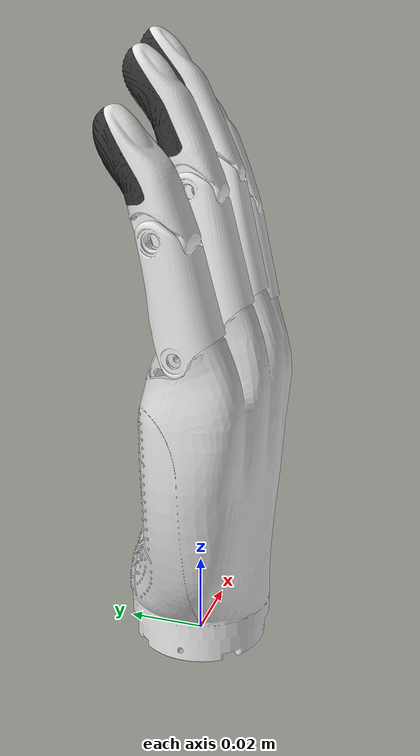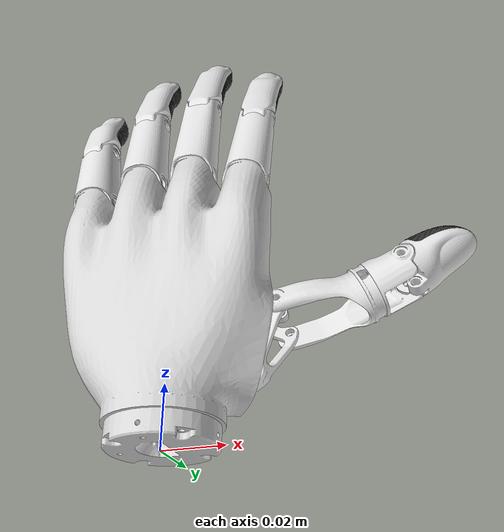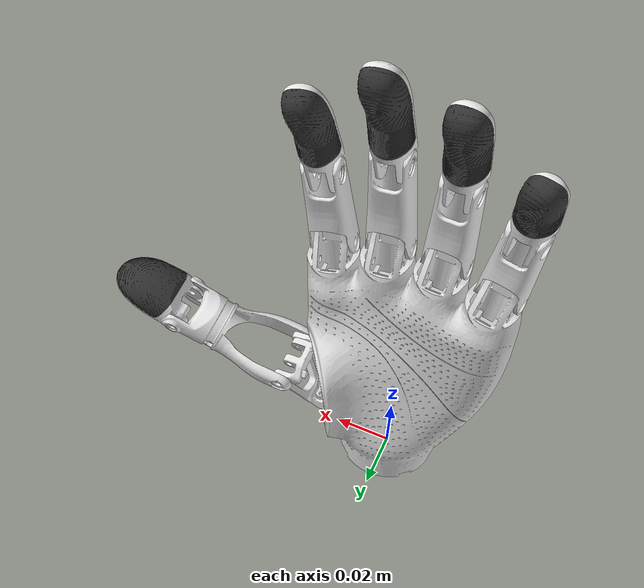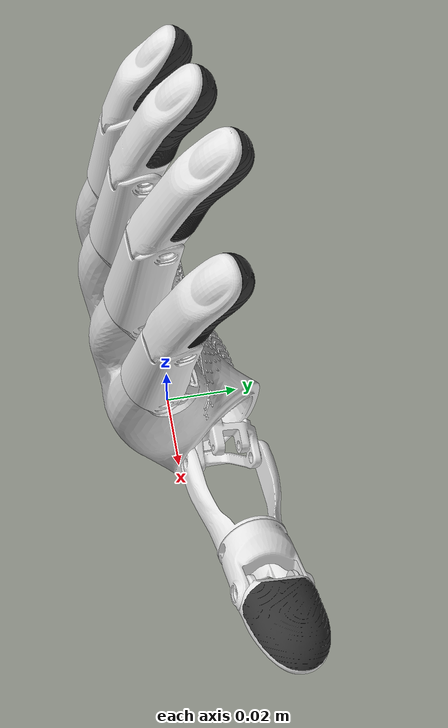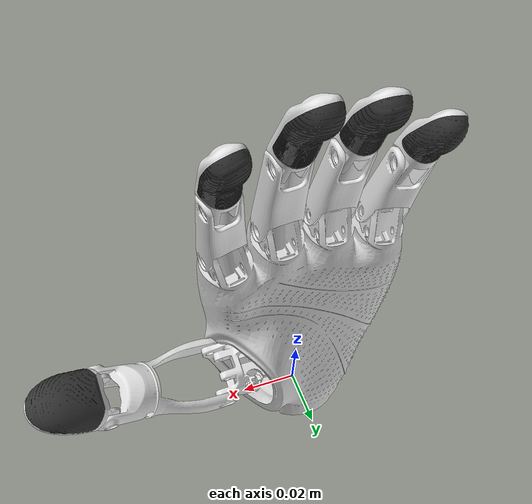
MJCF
<?xml version="1.0" encoding="utf-8"?>
<mujoco model="DH116S-L000-A1">

  <compiler angle="radian" meshdir="../meshes" eulerseq="XYZ" autolimits="true"/>
  <option gravity="0 0 -9.81" timestep="0.002" iterations="100"/>

  <default>
    <!-- 统一关节阻尼与虚拟惯量，配合位置执行器形成过阻尼响应，减小摇晃 -->
    <joint type="hinge" damping="2.0" armature="0.01" frictionloss="0"/>
    <!-- 默认关闭接触参与；需要接触的被动指节/胶垫在各自 geom 上单独覆盖 -->
    <geom condim="4" friction="1.0 0.005 0.001" contype="0" conaffinity="0"/>
    <!-- equality: 减小 solref[0] 时间常数 → 约束更硬，残差更小 -->
    <equality solref="0.004 1" solimp="0.9 0.99 0.001 0.5 2"/>
  </default>

  <!-- ==================== 网格资源 ==================== -->
  <asset>
    <mesh name="base_link" file="base_link.STL"/>
    <mesh name="finger11_link" file="finger11_link.STL"/>
    <mesh name="finger12_link" file="finger12_link.STL"/>
    <mesh name="finger13_link" file="finger13_link.STL"/>
    <mesh name="finger14_link" file="finger14_link.STL"/>
    <mesh name="finger21_link" file="finger21_link.STL"/>
    <mesh name="finger22_link" file="finger22_link.STL"/>
    <mesh name="finger23_link" file="finger23_link.STL"/>
    <mesh name="finger31_link" file="finger31_link.STL"/>
    <mesh name="finger32_link" file="finger32_link.STL"/>
    <mesh name="finger33_link" file="finger33_link.STL"/>
    <mesh name="finger41_link" file="finger41_link.STL"/>
    <mesh name="finger42_link" file="finger42_link.STL"/>
    <mesh name="finger43_link" file="finger43_link.STL"/>
    <mesh name="finger51_link" file="finger51_link.STL"/>
    <mesh name="finger52_link" file="finger52_link.STL"/>
    <mesh name="finger53_link" file="finger53_link.STL"/>
  </asset>

  <!-- ==================== 运动体树 ==================== -->
  <worldbody>

    <!-- 手掌基座（焊死在世界坐标系） -->
    <body name="base_link" pos="0 0 0">
      <geom name="base_link" type="mesh" mesh="base_link" rgba="0.85 0.85 0.85 1"/>
      <inertial pos="0.000544524993373097 -0.00750466902165473 0.0473989905049091" mass="0.106661851888605" fullinertia="4.60958938891066E-05 6.68395890156874E-05 2.99930119861266E-05 -4.13539236103623E-08 1.98096595874894E-07 1.57819216681043E-06"/>

      <!-- ===== 手指 1：大拇指 (Thumb) ===== -->

      <!--
        finger11: 主动 — 拇指摆动 (MCP ab/adduction)
        绕 +Z 轴，范围 0~1.588 rad，独立执行器驱动
      -->
      <body name="finger11_link" pos="0.0193521365394396 0.00780520239676655 0.0343200230340877" euler="0 5.66182786981891E-05 0">
        <joint name="finger11" axis="0 0 1" range="0 1.588"/>
        <geom name="finger11_link" type="mesh" mesh="finger11_link" rgba="0.9 0.9 0.9 1"/>
        <inertial pos="0.00880711190023678 0.00163343220926083 0.00136775413572365" mass="0.00703896093413542" fullinertia="9.90699426372342E-07 9.57269339123916E-07 2.86923099019118E-07 -1.94396154626989E-08 -9.77092169793553E-08 -4.37556082720952E-08"/>

        <!--
          finger12: 主动 — 拇指 MCP 屈曲 (MCP flexion)
          绕 -X 轴，范围 0~1.030 rad，独立执行器驱动
        -->
        <body name="finger12_link" pos="0.0149999999999999 0.00241716818236522 0.00671430739572605" euler="0.914542570706424 0.26179938779915 1.5707963267949">
          <joint name="finger12" axis="-1 0 0" range="0 1.030"/>
          <geom name="finger12_link" type="mesh" mesh="finger12_link" rgba="0.9 0.9 0.9 1"/>
          <inertial pos="0.000626165204877099 -0.00814581305344735 0.020646424515226" mass="0.00572071000157471" fullinertia="1.08317641871166E-06 1.26897009959513E-06 5.51662991743827E-07 1.92569888242211E-09 -1.00701276813813E-08 2.85476025728995E-07"/>

          <body name="finger13_link" pos="0.000907073874635978 -0.012631430230703 0.0382111085733653" euler="0.320192464474519 0.0133797340704482 0.0102567262059099">
            <joint name="finger13" axis="-1 0 0" range="0 1.13"/>
            <geom name="finger13_link" type="mesh" mesh="finger13_link" rgba="0.9 0.9 0.9 1" contype="1" conaffinity="1"/>
            <inertial pos="2.07998097687193E-05 -0.000735323631083362 0.00878868708953141" mass="0.00512347195060515" fullinertia="2.40948357970622E-07 3.07751224311247E-07 1.6169760241038E-07 -5.09925158040025E-10 -9.60120677468293E-10 -7.35275312906535E-09"/>

            <!--
              finger14_link: 拇指橡胶垫
              无关节，完全固连到 finger13_link，随 IP 一同运动
            -->
            <body name="finger14_link" pos="0 0 0" euler="0 0 0">
              <geom name="finger14_link" type="mesh" mesh="finger14_link" rgba="0.2 0.2 0.2 1" contype="1" conaffinity="1"/>
              <inertial pos="-3.82292380026773E-06 0.00466183376594907 0.0121285985080434" mass="0.00240509776372723" fullinertia="6.51447989844391E-08 9.97646532599649E-08 5.51927068070888E-08 -3.50977911008853E-10 -5.25932270434576E-10 3.06515732443468E-09"/>
            </body>

          </body>
        </body>
      </body>

      <!-- ===== 手指 2：食指 (Index) ===== -->

      <!--
        finger21: 主动 — 食指 MCP
        绕 -X 轴，范围 0~1.257 rad，独立执行器驱动
      -->
      <body name="finger21_link" pos="0.0263221667373393 -0.00532638133131497 0.0839088174238425" euler="0.0157127180588976 0.0976603903613511 0.159786795598776">
        <joint name="finger21" axis="-1 0 0" range="0 1.257"/>
        <geom name="finger21_link" type="mesh" mesh="finger21_link" rgba="0.9 0.9 0.9 1"/>
        <inertial pos="3.48658519827572E-06 0.000948250837583636 0.0145873180381056" mass="0.00393802264883532" fullinertia="3.15961467581521E-07 3.37002395494748E-07 1.60677749968883E-07 -4.20917811183589E-11 -5.78570860505374E-11 -4.22831681499364E-08"/>

        <!--
          finger22: 从动 — 食指 PIP
          绕 -X 轴，由 equality 约束跟随 finger21 (MCP)
          原始公式(°): y = 0.0067x² + 0.8847x + 2.1926
          polycoef(rad): [0.038265, 0.8847, 0.383882, 0, 0]
        -->
        <body name="finger22_link" pos="0 0.00510326179486572 0.027558142915563" euler="-0.183107378899691 0 0">
          <joint name="finger22" axis="-1 0 0" range="0 1.75"/>
          <geom name="finger22_link" type="mesh" mesh="finger22_link" rgba="0.9 0.9 0.9 1" contype="1" conaffinity="1"/>
          <inertial pos="3.4802021511543E-05 -0.0013486986363819 0.0109130316550571" mass="0.00359512240318104" fullinertia="3.71466761108892E-07 3.74376153910801E-07 6.27182251872621E-08 -1.29499027210776E-10 -2.16937317653213E-09 -4.18381122144735E-08"/>

          <!--
            finger23_link: 食指橡胶垫
            无关节，完全固连到 finger22_link，随 PIP 一同运动
          -->
          <body name="finger23_link" pos="0 0 0" euler="0 0 0">
            <geom name="finger23_link" type="mesh" mesh="finger23_link" rgba="0.2 0.2 0.2 1" contype="1" conaffinity="1"/>
            <inertial pos="7.82510692590443E-05 0.00383960022189855 0.0191163509786596" mass="0.00194918551000528" fullinertia="9.24802884509747E-08 9.4711884333877E-08 3.02506375048604E-08 2.86384855175092E-11 -2.8430749674239E-11 -2.20774521775598E-08"/>
          </body>

        </body>
      </body>

      <!-- ===== 手指 3：中指 (Middle) ===== -->

      <!--
        finger31: 主动 — 中指 MCP
        绕 -X 轴，范围 0~1.257 rad，独立执行器驱动
      -->
      <body name="finger31_link" pos="0.00853056012195752 -0.00653399721710813 0.08818546795159" euler="0.000712944465730327 0.0134076578043506 0.0531259881623533">
        <joint name="finger31" axis="-1 0 0" range="0 1.257"/>
        <geom name="finger31_link" type="mesh" mesh="finger31_link" rgba="0.9 0.9 0.9 1"/>
        <inertial pos="2.43928457896447E-06 0.00125405351222651 0.0166476625726954" mass="0.00465629805037929" fullinertia="4.64033183836396E-07 4.82279099347931E-07 1.92342304939614E-07 -6.96661919362374E-11 -4.25124779854874E-11 -6.61666793058518E-08"/>

        <!--
          finger32: 从动 — 中指 PIP
          绕 -X 轴，由 equality 约束跟随 finger31 (MCP)
          原始公式(°): y = 0.0076x² + 0.8485x + 2.0597
          polycoef(rad): [0.035946, 0.8485, 0.435448, 0, 0]
        -->
        <body name="finger32_link" pos="0 0.00597179476535116 0.031978135864213" euler="0 0 0">
          <joint name="finger32" axis="-1 0 0" range="0 1.75"/>
          <geom name="finger32_link" type="mesh" mesh="finger32_link" rgba="0.9 0.9 0.9 1" contype="1" conaffinity="1"/>
          <inertial pos="5.01008760783739E-07 0.00197036044989129 0.0124117968912229" mass="0.00396494093318317" fullinertia="5.13626527975483E-07 4.59220436955248E-07 1.2884536852607E-07 -6.50187509823643E-10 -1.427207122136E-09 -1.60262467986869E-07"/>

          <!--
            finger33_link: 中指橡胶垫
            无关节，完全固连到 finger32_link，随 PIP 一同运动
          -->
          <body name="finger33_link" pos="0 0 0" euler="0 0 0">
            <geom name="finger33_link" type="mesh" mesh="finger33_link" rgba="0.2 0.2 0.2 1" contype="1" conaffinity="1"/>
            <inertial pos="-8.36698258038782E-07 0.00923385266648058 0.019768310971155" mass="0.00227281439382211" fullinertia="1.47849455761078E-07 1.24393141276961E-07 5.96778300199862E-08 -3.47553525565444E-12 4.73897847071394E-12 -5.64492431895065E-08"/>
          </body>

        </body>
      </body>

      <!-- ===== 手指 4：无名指 (Ring) ===== -->

      <!--
        finger41: 主动 — 无名指 MCP
        绕 -X 轴，范围 0~1.257 rad，独立执行器驱动
      -->
      <body name="finger41_link" pos="-0.00888762654492145 -0.00728133879903732 0.087396405615583" euler="0.00302662499820262 -0.0615538222955632 -0.0491619519178472">
        <joint name="finger41" axis="-1 0 0" range="0 1.257"/>
        <geom name="finger41_link" type="mesh" mesh="finger41_link" rgba="0.9 0.9 0.9 1"/>
        <inertial pos="2.05886925985777E-06 0.00090785719008161 0.0149119186393758" mass="0.00414279060803409" fullinertia="3.62106671626076E-07 3.80908507437567E-07 1.70352561515995E-07 -5.103578461109E-11 -3.5507325901272E-11 -5.38270721397437E-08"/>

        <body name="finger42_link" pos="0 0.0054849861571379 0.0290146270636347" euler="0 0 0">
          <joint name="finger42" axis="-1 0 0" range="0 1.75"/>
          <geom name="finger42_link" type="mesh" mesh="finger42_link" rgba="0.9 0.9 0.9 1" contype="1" conaffinity="1"/>
          <inertial pos="2.84390017567804E-05 0.00112452617014073 0.0112028625820284" mass="0.00382854887772676" fullinertia="3.99470431936905E-07 3.69872009847734E-07 9.9693004199021E-08 -5.67931499263376E-10 -2.20703573764736E-09 -1.08637975960505E-07"/>

          <!--
            finger43_link: 无名指橡胶垫
            无关节，完全固连到 finger42_link，随 PIP 一同运动
          -->
          <body name="finger43_link" pos="0 0 0" euler="0 0 0">
            <geom name="finger43_link" type="mesh" mesh="finger43_link" rgba="0.2 0.2 0.2 1" contype="1" conaffinity="1"/>
            <inertial pos="8.26566494929459E-05 0.0080032742682453 0.0186602518602537" mass="0.00194917712642498" fullinertia="9.24798762660555E-08 8.29792742143362E-08 4.19842737997981E-08 2.85735039571308E-11 -6.99992684169389E-11 -3.32575242019174E-08"/>
          </body>

        </body>
      </body>

      <!-- ===== 手指 5：小拇指 (Pinky) ===== -->

      <!--
        finger51: 主动 — 小拇指 MCP
        绕 -X 轴，范围 0~1.291 rad，独立执行器驱动
      -->
      <body name="finger51_link" pos="-0.0264481824708094 -0.0055488670962835 0.0829799586736383" euler="-0.153756050317575 -0.150571871776981 -0.147041448694914">
        <joint name="finger51" axis="-1 0 0" range="0 1.291"/>
        <geom name="finger51_link" type="mesh" mesh="finger51_link" rgba="0.9 0.9 0.9 1"/>
        <inertial pos="2.41601579473172E-06 -0.00181484079250304 0.013139258005117" mass="0.00345036527036827" fullinertia="2.37942641790154E-07 2.69109132278489E-07 1.35190326045818E-07 -5.32043409424851E-12 -8.79535456047855E-11 -7.2412901851165E-09"/>

        <body name="finger52_link" pos="0 0 0.0250241718362191" euler="0.175969487717828 0 0">
          <joint name="finger52" axis="-1 0 0" range="0 1.75"/>
          <geom name="finger52_link" type="mesh" mesh="finger52_link" rgba="0.9 0.9 0.9 1" contype="1" conaffinity="1"/>
          <inertial pos="3.15909470655629E-05 0.000420621153260112 0.00853927270244959" mass="0.00345865291103541" fullinertia="2.5318519633019E-07 2.40188074028539E-07 7.82039203203485E-08 -2.39436526506233E-10 -1.04452087253161E-09 -5.52012080873732E-08"/>

          <!--
            finger53_link: 小拇指橡胶垫
            无关节，完全固连到 finger52_link，随 PIP 一同运动
          -->
          <body name="finger53_link" pos="0 0 0" euler="0 0 0">
            <geom name="finger53_link" type="mesh" mesh="finger53_link" rgba="0.2 0.2 0.2 1" contype="1" conaffinity="1"/>
            <inertial pos="0.000103786229699587 0.00707344092632247 0.0157672382146304" mass="0.00149700207994512" fullinertia="4.39757858831556E-08 4.12565550714953E-08 2.55293698498865E-08 9.14180234774832E-11 2.33368010245624E-10 -1.41132607567297E-08"/>
          </body>

        </body>
      </body>

    </body>
  </worldbody>

  <equality>
    <!-- 大拇指 IP (finger13, 从动) 跟随 MCP flexion (finger12, 主动) -->
    <joint name="eq_thumb" joint1="finger13" joint2="finger12" polycoef="-0.015082 0.929 -0.045837 0 0"/>

    <!-- 食指 PIP (finger22, 从动) 跟随 MCP (finger21, 主动) -->
    <joint name="eq_index" joint1="finger22" joint2="finger21" polycoef="0.038265 0.8847 0.383882 0 0"/>

    <!-- 中指 PIP (finger32, 从动) 跟随 MCP (finger31, 主动) -->
    <joint name="eq_middle" joint1="finger32" joint2="finger31" polycoef="0.035946 0.8485 0.435448 0 0"/>

    <!-- 无名指 PIP (finger42, 从动) 跟随 MCP (finger41, 主动) -->
    <joint name="eq_ring" joint1="finger42" joint2="finger41" polycoef="0.043170 0.8321 0.452637 0 0"/>

    <!-- 小拇指 PIP (finger52, 从动) 跟随 MCP (finger51, 主动) -->
    <joint name="eq_pinky" joint1="finger52" joint2="finger51" polycoef="0.035218 0.7349 0.429718 0 0"/>
  </equality>

  <actuator>
    <!-- 大拇指: 2 个主动 DOF -->
    <position name="act_finger11" joint="finger11" kp="50" kv="2.0" ctrlrange="0 1.588"/>
    <position name="act_finger12" joint="finger12" kp="50" kv="2.0" ctrlrange="0 1.030"/>

    <!-- 食指: 1 个主动 DOF (PIP 由 equality 驱动) -->
    <position name="act_finger21" joint="finger21" kp="50" kv="2.0" ctrlrange="0 1.257"/>

    <!-- 中指: 1 个主动 DOF -->
    <position name="act_finger31" joint="finger31" kp="50" kv="2.0" ctrlrange="0 1.257"/>

    <!-- 无名指: 1 个主动 DOF -->
    <position name="act_finger41" joint="finger41" kp="50" kv="2.0" ctrlrange="0 1.257"/>

    <!-- 小拇指: 1 个主动 DOF -->
    <position name="act_finger51" joint="finger51" kp="50" kv="2.0" ctrlrange="0 1.291"/>
  </actuator>

</mujoco>
